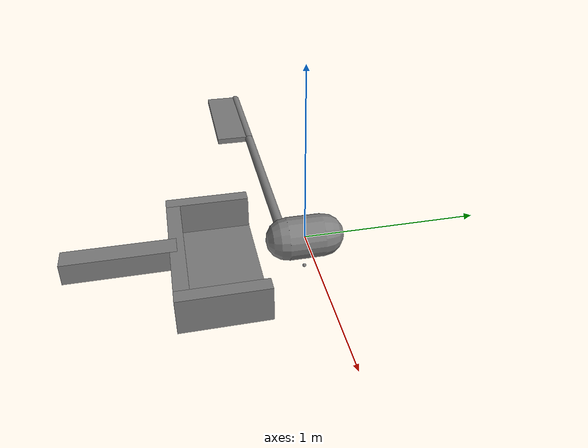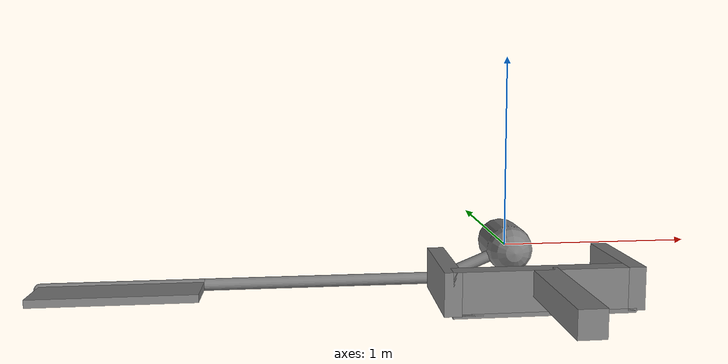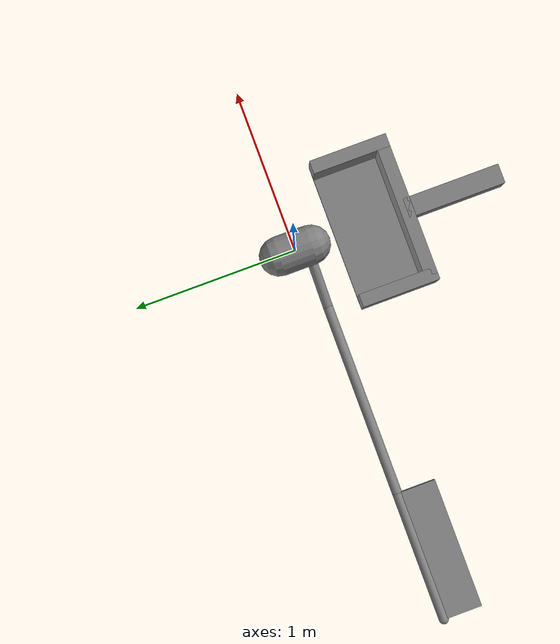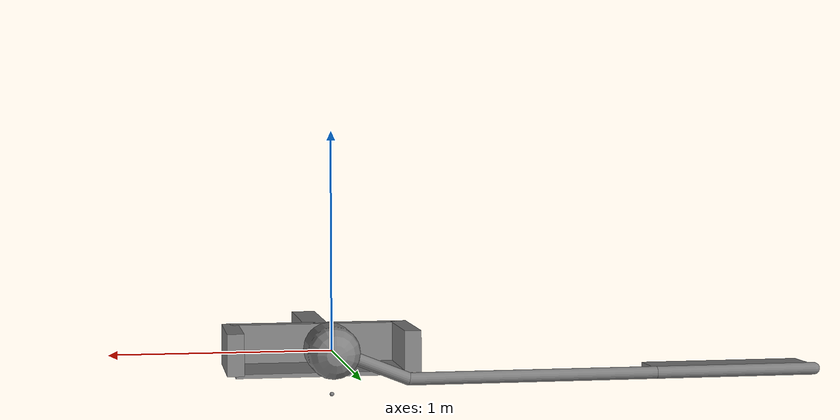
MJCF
<mujoco model="arm3d">
    <compiler inertiafromgeom="true" angle="radian" coordinate="local" />
    <option timestep="0.01" gravity="0 0 0" iterations="20" integrator="Euler" />

    <default>
        <joint armature='0.04' damping="1" limited="true"/>
        <geom friction=".8 .1 .1" density="300" margin="0.002" condim="1" contype="1" conaffinity="1"/>
    </default>

    <worldbody>
        <light diffuse=".9 .9 .9" pos="0 0 5" dir="0 0 -1"/>

        <body name="palm" pos="0 0 0" zaxis="0 1 0">
            <geom type="capsule" fromto="0 0 -0.1 0 0 0.1" size="0.12"/>
            <body name="proximal_1" pos="0 0 -0.075" axisangle="0 0 1 -0.385">
                <joint name="proximal_j_1" type="hinge" pos="0 0 0" axis="0 0 1" range="-3.0 3.0" damping="1.0" />
                <geom  type="capsule"  fromto="0 0 0 -0.4 0 0" size="0.03" contype="1" conaffinity="1"/>
                <body name="distal_1" pos="-0.4 0 0" axisangle="0 0 1 0.385">
                    <joint name="distal_j_1" type="hinge" pos="0 0 0" axis="0 0 1" range="-3.5 3.5" damping="1.0"/>
                    <geom type="capsule"  fromto="0 0 0 -1.2 0 0" size="0.03" contype="1" conaffinity="1"/>
                    <body name="distal_2" pos="-1.2 0 0">
                        <joint name="distal_j_2" type="hinge" pos="0 0 0" axis="0 0 1" range="-2.0 2.0" damping="1.0"/>
                        <geom type="capsule" fromto="0 0 0 -0.8 0 0" size="0.03" contype="1" conaffinity="1"/>
                        <body name="distal_4" pos="-0.8 0 0">
                            <site name="tip armr" pos="0 0 0" size="0.01"/>
                            <site name="tip arml" pos="0.5 0 0" size="0.01" />
                            <geom type="box" pos="0.4 0 -0.12" size="0.4 0.02 0.12" contype="1" conaffinity="1" />
                        </body>
                    </body>
                </body>
            </body>
        </body>

        <body name="object0" pos="0 0 -0.08">
            <geom rgba="1 0 0 1" type="sphere" size="0.05" density='0.001' contype="1" conaffinity="1"/>
            <joint name="obj0_slidey" type="slide" pos="0 0 0" axis="0 0 1" range="-10.3213 10.3" damping="0.5"/>
            <joint name="obj0_slidex" type="slide" pos="0 0 0" axis="1 0 0" range="-10.3213 10.3" damping="0.5"/>
            <site name="site0" pos="0 0 -0.12" size="0.01" />
        </body>

        <body name="goal" pos="0 -0.5 -0.145">
            <geom type="box" size="0.42 0.24 0.01" density='0.00001' contype="0" conaffinity="0"/>
            <geom type="box" size="0.04 0.24 0.1" pos="-0.42 0 0.1" density='1000' contype="1" conaffinity="1"/>
            <geom type="box" size="0.04 0.24 0.1" pos="0.42 0 0.1" density='1000' contype="1" conaffinity="1"/>
            <geom type="box" size="0.42 0.04 0.1" pos="0. -0.20 0.1" density='1000' contype="1" conaffinity="1"/>
            <geom type="box" size="0.06 0.3 0.06" pos="0. -0.50 0.14" density='1000' contype="1" conaffinity="1"/>

            <joint name="goal_slidey" type="slide" pos="0 0 0" axis="0 0 1" range="-10.3213 10.3" damping="0.5"/>
            <joint name="goal_slidex" type="slide" pos="0 0 0" axis="1 0 0" range="-10.3213 10.3" damping="0.5"/>
            <site name="siteg" pos="0 0 0" size="0.01" />
        </body>

    </worldbody>

    <actuator>
        <motor joint="proximal_j_1" ctrlrange="-3 3" ctrllimited="true"/>
        <motor joint="distal_j_1" ctrlrange="-3 3" ctrllimited="true"/>
        <motor joint="distal_j_2" ctrlrange="-3 3" ctrllimited="true"/>
    </actuator>
</mujoco>
